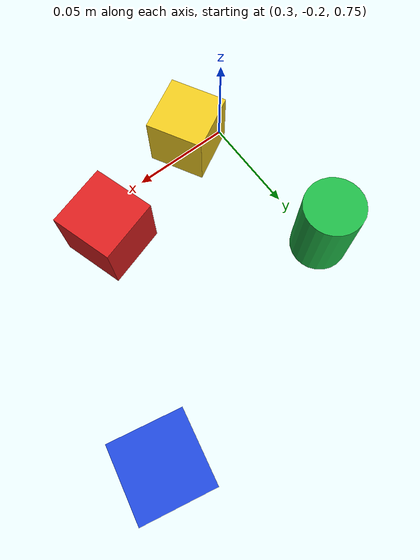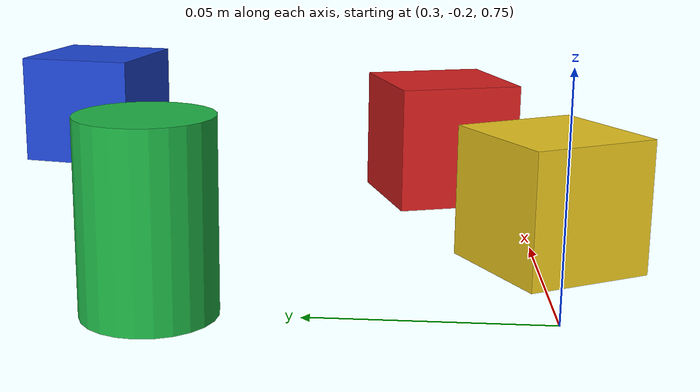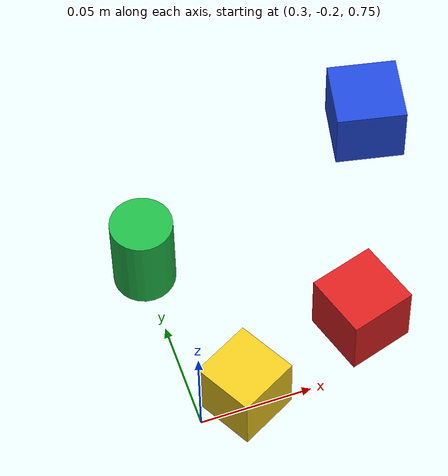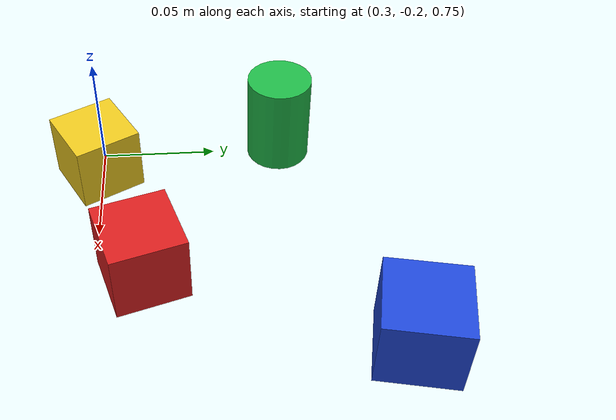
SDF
<?xml version="1.0" ?>
<sdf version="1.6">
  <world name="intellisort_workcell">

    <include>
      <uri>model://ground_plane</uri>
    </include>
    <include>
      <uri>model://sun</uri>
    </include>

    <physics type="ode">
      <max_step_size>0.002</max_step_size>
      <real_time_factor>1.0</real_time_factor>
      <real_time_update_rate>500</real_time_update_rate>
    </physics>

    <scene>
      <ambient>0.55 0.55 0.55 1</ambient>
      <background>0.65 0.72 0.80 1</background>
      <shadows>true</shadows>
    </scene>

    <!-- Colored workpieces as free bodies on the table -->
    <model name="part_red">
      <pose>0.38 -0.18 0.77 0 0 0.3</pose>
      <link name="link">
        <inertial>
          <mass>0.08</mass>
          <inertia>
            <ixx>1e-5</ixx><iyy>1e-5</iyy><izz>1e-5</izz>
            <ixy>0</ixy><ixz>0</ixz><iyz>0</iyz>
          </inertia>
        </inertial>
        <collision name="c">
          <geometry><box><size>0.03 0.03 0.03</size></box></geometry>
          <surface>
            <friction><ode><mu>1.5</mu><mu2>1.5</mu2></ode></friction>
          </surface>
        </collision>
        <visual name="v">
          <geometry><box><size>0.03 0.03 0.03</size></box></geometry>
          <material>
            <ambient>0.85 0.12 0.12 1</ambient>
            <diffuse>0.85 0.12 0.12 1</diffuse>
          </material>
        </visual>
      </link>
    </model>

    <model name="part_green">
      <pose>0.30 -0.12 0.77 0 0 0</pose>
      <link name="link">
        <inertial>
          <mass>0.08</mass>
          <inertia>
            <ixx>1e-5</ixx><iyy>1e-5</iyy><izz>1e-5</izz>
            <ixy>0</ixy><ixz>0</ixz><iyz>0</iyz>
          </inertia>
        </inertial>
        <collision name="c">
          <geometry><cylinder><radius>0.014</radius><length>0.04</length></cylinder></geometry>
          <surface>
            <friction><ode><mu>1.5</mu><mu2>1.5</mu2></ode></friction>
          </surface>
        </collision>
        <visual name="v">
          <geometry><cylinder><radius>0.014</radius><length>0.04</length></cylinder></geometry>
          <material>
            <ambient>0.12 0.72 0.28 1</ambient>
            <diffuse>0.12 0.72 0.28 1</diffuse>
          </material>
        </visual>
      </link>
    </model>

    <model name="part_blue">
      <pose>0.42 -0.08 0.77 0 0 -0.2</pose>
      <link name="link">
        <inertial>
          <mass>0.08</mass>
          <inertia>
            <ixx>1e-5</ixx><iyy>1e-5</iyy><izz>1e-5</izz>
            <ixy>0</ixy><ixz>0</ixz><iyz>0</iyz>
          </inertia>
        </inertial>
        <collision name="c">
          <geometry><box><size>0.032 0.032 0.03</size></box></geometry>
          <surface>
            <friction><ode><mu>1.5</mu><mu2>1.5</mu2></ode></friction>
          </surface>
        </collision>
        <visual name="v">
          <geometry><box><size>0.032 0.032 0.03</size></box></geometry>
          <material>
            <ambient>0.12 0.28 0.85 1</ambient>
            <diffuse>0.12 0.28 0.85 1</diffuse>
          </material>
        </visual>
      </link>
    </model>

    <model name="part_yellow">
      <pose>0.32 -0.20 0.77 0 0 0.5</pose>
      <link name="link">
        <inertial>
          <mass>0.08</mass>
          <inertia>
            <ixx>1e-5</ixx><iyy>1e-5</iyy><izz>1e-5</izz>
            <ixy>0</ixy><ixz>0</ixz><iyz>0</iyz>
          </inertia>
        </inertial>
        <collision name="c">
          <geometry><box><size>0.028 0.028 0.028</size></box></geometry>
          <surface>
            <friction><ode><mu>1.5</mu><mu2>1.5</mu2></ode></friction>
          </surface>
        </collision>
        <visual name="v">
          <geometry><box><size>0.028 0.028 0.028</size></box></geometry>
          <material>
            <ambient>0.92 0.78 0.12 1</ambient>
            <diffuse>0.92 0.78 0.12 1</diffuse>
          </material>
        </visual>
      </link>
    </model>

    <!-- Floor light -->
    <light type="directional" name="key_light">
      <cast_shadows>true</cast_shadows>
      <pose>0 0 5 0 0 0</pose>
      <diffuse>0.9 0.9 0.9 1</diffuse>
      <specular>0.3 0.3 0.3 1</specular>
      <direction>-0.3 0.2 -1</direction>
    </light>

  </world>
</sdf>
